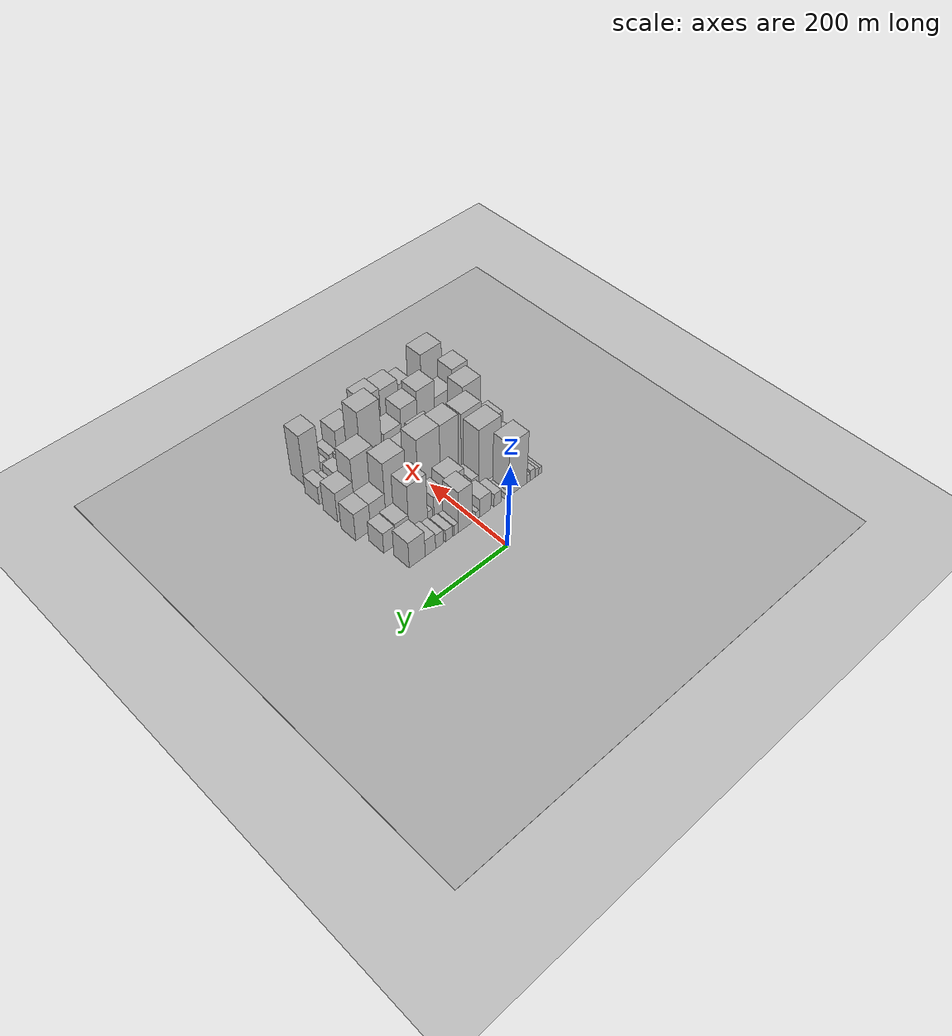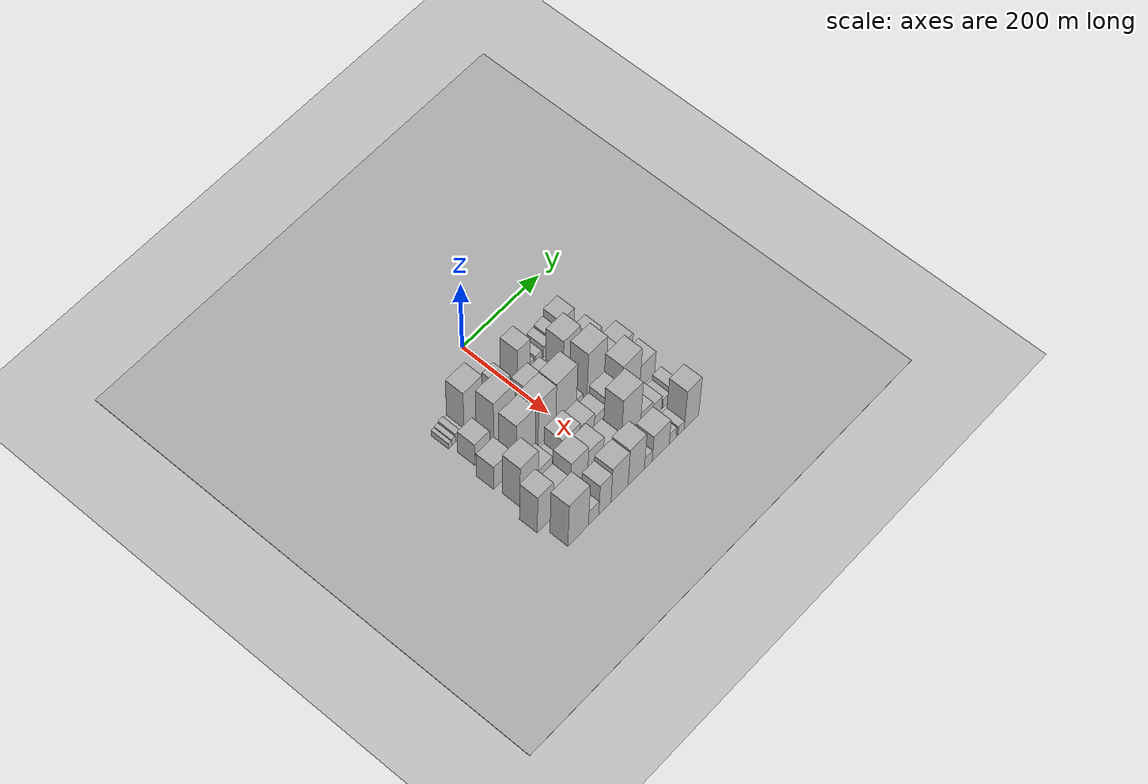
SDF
<sdf version="1.6">
 <world name="default">
  <include><name>ground_plane_1</name><uri>model://HANNAS_ground_plane</uri></include>
  <include>
   <name>ground_plane_2</name>
   <uri>model://HANNAS_ground_plane</uri>
   <pose>100 0 0  0 0 0</pose>
  </include>
  <model name="building_18">
   <static>1</static>
   <pose>100.0000 -163.0184 0 0.000000 0.000000 0.000000</pose>
   <link name="link">
    <pose>0 0 9.00 0 0 0</pose>
    <collision name="collision"><geometry><box><size>40.0000 7.5488 18.0000</size></box></geometry></collision>
    <visual name="visual">
     <cast_shadows>0</cast_shadows>
     <geometry><box><size>40.0000 7.5488 18.0000</size></box></geometry>
     <material>
      <script>
       <uri>model://HANNAS_wall/materials/scripts</uri>
       <uri>model://HANNAS_wall/materials/textures</uri>
       <name>vrc/HANNAS_wall</name>
      </script>
     </material>
    </visual>
   </link>
  </model>
  <model name="building_19">
   <static>1</static>
   <pose>100.0000 -154.2603 0 0.000000 0.000000 0.000000</pose>
   <link name="link">
    <pose>0 0 10.50 0 0 0</pose>
    <collision name="collision"><geometry><box><size>40.0000 9.9674 21.0000</size></box></geometry></collision>
    <visual name="visual">
     <cast_shadows>0</cast_shadows>
     <geometry><box><size>40.0000 9.9674 21.0000</size></box></geometry>
     <material>
      <script>
       <uri>model://HANNAS_wall/materials/scripts</uri>
       <uri>model://HANNAS_wall/materials/textures</uri>
       <name>vrc/HANNAS_wall</name>
      </script>
     </material>
    </visual>
   </link>
  </model>
  <model name="building_20">
   <static>1</static>
   <pose>100.0000 -143.1152 0 0.000000 0.000000 0.000000</pose>
   <link name="link">
    <pose>0 0 13.50 0 0 0</pose>
    <collision name="collision"><geometry><box><size>40.0000 12.3230 27.0000</size></box></geometry></collision>
    <visual name="visual">
     <cast_shadows>0</cast_shadows>
     <geometry><box><size>40.0000 12.3230 27.0000</size></box></geometry>
     <material>
      <script>
       <uri>model://HANNAS_wall/materials/scripts</uri>
       <uri>model://HANNAS_wall/materials/textures</uri>
       <name>vrc/HANNAS_wall</name>
      </script>
     </material>
    </visual>
   </link>
  </model>
  <model name="building_21">
   <static>1</static>
   <pose>100.0000 -132.4435 0 0.000000 0.000000 0.000000</pose>
   <link name="link">
    <pose>0 0 10.50 0 0 0</pose>
    <collision name="collision"><geometry><box><size>40.0000 9.0203 21.0000</size></box></geometry></collision>
    <visual name="visual">
     <cast_shadows>0</cast_shadows>
     <geometry><box><size>40.0000 9.0203 21.0000</size></box></geometry>
     <material>
      <script>
       <uri>model://HANNAS_wall/materials/scripts</uri>
       <uri>model://HANNAS_wall/materials/textures</uri>
       <name>vrc/HANNAS_wall</name>
      </script>
     </material>
    </visual>
   </link>
  </model>
  <model name="building_22">
   <static>1</static>
   <pose>100.0000 -104.0287 0 0.000000 0.000000 0.000000</pose>
   <link name="link">
    <pose>0 0 67.50 0 0 0</pose>
    <collision name="collision"><geometry><box><size>40.0000 47.8095 135.0000</size></box></geometry></collision>
    <visual name="visual">
     <cast_shadows>0</cast_shadows>
     <geometry><box><size>40.0000 47.8095 135.0000</size></box></geometry>
     <material>
      <script>
       <uri>model://HANNAS_wall/materials/scripts</uri>
       <uri>model://HANNAS_wall/materials/textures</uri>
       <name>vrc/HANNAS_wall</name>
      </script>
     </material>
    </visual>
   </link>
  </model>
  <model name="building_23">
   <static>1</static>
   <pose>100.0000 -76.4820 0 0.000000 0.000000 0.000000</pose>
   <link name="link">
    <pose>0 0 7.50 0 0 0</pose>
    <collision name="collision"><geometry><box><size>40.0000 7.2839 15.0000</size></box></geometry></collision>
    <visual name="visual">
     <cast_shadows>0</cast_shadows>
     <geometry><box><size>40.0000 7.2839 15.0000</size></box></geometry>
     <material>
      <script>
       <uri>model://HANNAS_wall/materials/scripts</uri>
       <uri>model://HANNAS_wall/materials/textures</uri>
       <name>vrc/HANNAS_wall</name>
      </script>
     </material>
    </visual>
   </link>
  </model>
  <model name="building_24">
   <static>1</static>
   <pose>100.0000 -53.9231 0 0.000000 0.000000 0.000000</pose>
   <link name="link">
    <pose>0 0 16.50 0 0 0</pose>
    <collision name="collision"><geometry><box><size>40.0000 17.8339 33.0000</size></box></geometry></collision>
    <visual name="visual">
     <cast_shadows>0</cast_shadows>
     <geometry><box><size>40.0000 17.8339 33.0000</size></box></geometry>
     <material>
      <script>
       <uri>model://HANNAS_wall/materials/scripts</uri>
       <uri>model://HANNAS_wall/materials/textures</uri>
       <name>vrc/HANNAS_wall</name>
      </script>
     </material>
    </visual>
   </link>
  </model>
  <model name="building_25">
   <static>1</static>
   <pose>100.0000 -22.7039 0 0.000000 0.000000 0.000000</pose>
   <link name="link">
    <pose>0 0 24.00 0 0 0</pose>
    <collision name="collision"><geometry><box><size>40.0000 28.6043 48.0000</size></box></geometry></collision>
    <visual name="visual">
     <cast_shadows>0</cast_shadows>
     <geometry><box><size>40.0000 28.6043 48.0000</size></box></geometry>
     <material>
      <script>
       <uri>model://HANNAS_wall/materials/scripts</uri>
       <uri>model://HANNAS_wall/materials/textures</uri>
       <name>vrc/HANNAS_wall</name>
      </script>
     </material>
    </visual>
   </link>
  </model>
  <model name="building_26">
   <static>1</static>
   <pose>100.0000 -3.8357 0 0.000000 0.000000 0.000000</pose>
   <link name="link">
    <pose>0 0 10.50 0 0 0</pose>
    <collision name="collision"><geometry><box><size>40.0000 9.1322 21.0000</size></box></geometry></collision>
    <visual name="visual">
     <cast_shadows>0</cast_shadows>
     <geometry><box><size>40.0000 9.1322 21.0000</size></box></geometry>
     <material>
      <script>
       <uri>model://HANNAS_wall/materials/scripts</uri>
       <uri>model://HANNAS_wall/materials/textures</uri>
       <name>vrc/HANNAS_wall</name>
      </script>
     </material>
    </visual>
   </link>
  </model>
  <model name="building_27">
   <static>1</static>
   <pose>100.0000 26.0662 0 0.000000 0.000000 0.000000</pose>
   <link name="link">
    <pose>0 0 52.50 0 0 0</pose>
    <collision name="collision"><geometry><box><size>40.0000 32.6717 105.0000</size></box></geometry></collision>
    <visual name="visual">
     <cast_shadows>0</cast_shadows>
     <geometry><box><size>40.0000 32.6717 105.0000</size></box></geometry>
     <material>
      <script>
       <uri>model://HANNAS_wall/materials/scripts</uri>
       <uri>model://HANNAS_wall/materials/textures</uri>
       <name>vrc/HANNAS_wall</name>
      </script>
     </material>
    </visual>
   </link>
  </model>
  <model name="building_28">
   <static>1</static>
   <pose>100.0000 47.9995 0 0.000000 0.000000 0.000000</pose>
   <link name="link">
    <pose>0 0 13.50 0 0 0</pose>
    <collision name="collision"><geometry><box><size>40.0000 11.1949 27.0000</size></box></geometry></collision>
    <visual name="visual">
     <cast_shadows>0</cast_shadows>
     <geometry><box><size>40.0000 11.1949 27.0000</size></box></geometry>
     <material>
      <script>
       <uri>model://HANNAS_wall/materials/scripts</uri>
       <uri>model://HANNAS_wall/materials/textures</uri>
       <name>vrc/HANNAS_wall</name>
      </script>
     </material>
    </visual>
   </link>
  </model>
  <model name="building_29">
   <static>1</static>
   <pose>100.0000 65.0719 0 0.000000 0.000000 0.000000</pose>
   <link name="link">
    <pose>0 0 15.00 0 0 0</pose>
    <collision name="collision"><geometry><box><size>40.0000 16.9499 30.0000</size></box></geometry></collision>
    <visual name="visual">
     <cast_shadows>0</cast_shadows>
     <geometry><box><size>40.0000 16.9499 30.0000</size></box></geometry>
     <material>
      <script>
       <uri>model://HANNAS_wall/materials/scripts</uri>
       <uri>model://HANNAS_wall/materials/textures</uri>
       <name>vrc/HANNAS_wall</name>
      </script>
     </material>
    </visual>
   </link>
  </model>
  <model name="building_30">
   <static>1</static>
   <pose>100.0000 87.8286 0 0.000000 0.000000 0.000000</pose>
   <link name="link">
    <pose>0 0 18.00 0 0 0</pose>
    <collision name="collision"><geometry><box><size>40.0000 18.5635 36.0000</size></box></geometry></collision>
    <visual name="visual">
     <cast_shadows>0</cast_shadows>
     <geometry><box><size>40.0000 18.5635 36.0000</size></box></geometry>
     <material>
      <script>
       <uri>model://HANNAS_wall/materials/scripts</uri>
       <uri>model://HANNAS_wall/materials/textures</uri>
       <name>vrc/HANNAS_wall</name>
      </script>
     </material>
    </visual>
   </link>
  </model>
  <model name="building_31">
   <static>1</static>
   <pose>100.0000 109.3706 0 0.000000 0.000000 0.000000</pose>
   <link name="link">
    <pose>0 0 21.00 0 0 0</pose>
    <collision name="collision"><geometry><box><size>40.0000 24.5204 42.0000</size></box></geometry></collision>
    <visual name="visual">
     <cast_shadows>0</cast_shadows>
     <geometry><box><size>40.0000 24.5204 42.0000</size></box></geometry>
     <material>
      <script>
       <uri>model://HANNAS_wall/materials/scripts</uri>
       <uri>model://HANNAS_wall/materials/textures</uri>
       <name>vrc/HANNAS_wall</name>
      </script>
     </material>
    </visual>
   </link>
  </model>
  <model name="building_32">
   <static>1</static>
   <pose>100.0000 140.1107 0 0.000000 0.000000 0.000000</pose>
   <link name="link">
    <pose>0 0 33.00 0 0 0</pose>
    <collision name="collision"><geometry><box><size>40.0000 36.9599 66.0000</size></box></geometry></collision>
    <visual name="visual">
     <cast_shadows>0</cast_shadows>
     <geometry><box><size>40.0000 36.9599 66.0000</size></box></geometry>
     <material>
      <script>
       <uri>model://HANNAS_wall/materials/scripts</uri>
       <uri>model://HANNAS_wall/materials/textures</uri>
       <name>vrc/HANNAS_wall</name>
      </script>
     </material>
    </visual>
   </link>
  </model>
  <model name="building_78">
   <static>1</static>
   <pose>155.0000 -142.1408 0 0.000000 0.000000 0.000000</pose>
   <link name="link">
    <pose>0 0 34.50 0 0 0</pose>
    <collision name="collision"><geometry><box><size>40.0000 37.4465 69.0000</size></box></geometry></collision>
    <visual name="visual">
     <cast_shadows>0</cast_shadows>
     <geometry><box><size>40.0000 37.4465 69.0000</size></box></geometry>
     <material>
      <script>
       <uri>model://HANNAS_wall/materials/scripts</uri>
       <uri>model://HANNAS_wall/materials/textures</uri>
       <name>vrc/HANNAS_wall</name>
      </script>
     </material>
    </visual>
   </link>
  </model>
  <model name="building_79">
   <static>1</static>
   <pose>155.0000 -86.2369 0 0.000000 0.000000 0.000000</pose>
   <link name="link">
    <pose>0 0 72.00 0 0 0</pose>
    <collision name="collision"><geometry><box><size>40.0000 54.3613 144.0000</size></box></geometry></collision>
    <visual name="visual">
     <cast_shadows>0</cast_shadows>
     <geometry><box><size>40.0000 54.3613 144.0000</size></box></geometry>
     <material>
      <script>
       <uri>model://HANNAS_wall/materials/scripts</uri>
       <uri>model://HANNAS_wall/materials/textures</uri>
       <name>vrc/HANNAS_wall</name>
      </script>
     </material>
    </visual>
   </link>
  </model>
  <model name="building_80">
   <static>1</static>
   <pose>155.0000 -50.6444 0 0.000000 0.000000 0.000000</pose>
   <link name="link">
    <pose>0 0 15.00 0 0 0</pose>
    <collision name="collision"><geometry><box><size>40.0000 16.8236 30.0000</size></box></geometry></collision>
    <visual name="visual">
     <cast_shadows>0</cast_shadows>
     <geometry><box><size>40.0000 16.8236 30.0000</size></box></geometry>
     <material>
      <script>
       <uri>model://HANNAS_wall/materials/scripts</uri>
       <uri>model://HANNAS_wall/materials/textures</uri>
       <name>vrc/HANNAS_wall</name>
      </script>
     </material>
    </visual>
   </link>
  </model>
  <model name="building_81">
   <static>1</static>
   <pose>155.0000 -28.6527 0 0.000000 0.000000 0.000000</pose>
   <link name="link">
    <pose>0 0 13.50 0 0 0</pose>
    <collision name="collision"><geometry><box><size>40.0000 11.1598 27.0000</size></box></geometry></collision>
    <visual name="visual">
     <cast_shadows>0</cast_shadows>
     <geometry><box><size>40.0000 11.1598 27.0000</size></box></geometry>
     <material>
      <script>
       <uri>model://HANNAS_wall/materials/scripts</uri>
       <uri>model://HANNAS_wall/materials/textures</uri>
       <name>vrc/HANNAS_wall</name>
      </script>
     </material>
    </visual>
   </link>
  </model>
  <model name="building_82">
   <static>1</static>
   <pose>155.0000 -2.6761 0 0.000000 0.000000 0.000000</pose>
   <link name="link">
    <pose>0 0 37.50 0 0 0</pose>
    <collision name="collision"><geometry><box><size>40.0000 40.7935 75.0000</size></box></geometry></collision>
    <visual name="visual">
     <cast_shadows>0</cast_shadows>
     <geometry><box><size>40.0000 40.7935 75.0000</size></box></geometry>
     <material>
      <script>
       <uri>model://HANNAS_wall/materials/scripts</uri>
       <uri>model://HANNAS_wall/materials/textures</uri>
       <name>vrc/HANNAS_wall</name>
      </script>
     </material>
    </visual>
   </link>
  </model>
  <model name="building_83">
   <static>1</static>
   <pose>155.0000 36.0222 0 0.000000 0.000000 0.000000</pose>
   <link name="link">
    <pose>0 0 27.00 0 0 0</pose>
    <collision name="collision"><geometry><box><size>40.0000 28.6031 54.0000</size></box></geometry></collision>
    <visual name="visual">
     <cast_shadows>0</cast_shadows>
     <geometry><box><size>40.0000 28.6031 54.0000</size></box></geometry>
     <material>
      <script>
       <uri>model://HANNAS_wall/materials/scripts</uri>
       <uri>model://HANNAS_wall/materials/textures</uri>
       <name>vrc/HANNAS_wall</name>
      </script>
     </material>
    </visual>
   </link>
  </model>
  <model name="building_84">
   <static>1</static>
   <pose>155.0000 59.5475 0 0.000000 0.000000 0.000000</pose>
   <link name="link">
    <pose>0 0 13.50 0 0 0</pose>
    <collision name="collision"><geometry><box><size>40.0000 12.4475 27.0000</size></box></geometry></collision>
    <visual name="visual">
     <cast_shadows>0</cast_shadows>
     <geometry><box><size>40.0000 12.4475 27.0000</size></box></geometry>
     <material>
      <script>
       <uri>model://HANNAS_wall/materials/scripts</uri>
       <uri>model://HANNAS_wall/materials/textures</uri>
       <name>vrc/HANNAS_wall</name>
      </script>
     </material>
    </visual>
   </link>
  </model>
  <model name="building_85">
   <static>1</static>
   <pose>155.0000 87.7738 0 0.000000 0.000000 0.000000</pose>
   <link name="link">
    <pose>0 0 63.00 0 0 0</pose>
    <collision name="collision"><geometry><box><size>40.0000 44.0051 126.0000</size></box></geometry></collision>
    <visual name="visual">
     <cast_shadows>0</cast_shadows>
     <geometry><box><size>40.0000 44.0051 126.0000</size></box></geometry>
     <material>
      <script>
       <uri>model://HANNAS_wall/materials/scripts</uri>
       <uri>model://HANNAS_wall/materials/textures</uri>
       <name>vrc/HANNAS_wall</name>
      </script>
     </material>
    </visual>
   </link>
  </model>
  <model name="building_86">
   <static>1</static>
   <pose>155.0000 125.3939 0 0.000000 0.000000 0.000000</pose>
   <link name="link">
    <pose>0 0 27.00 0 0 0</pose>
    <collision name="collision"><geometry><box><size>40.0000 31.2350 54.0000</size></box></geometry></collision>
    <visual name="visual">
     <cast_shadows>0</cast_shadows>
     <geometry><box><size>40.0000 31.2350 54.0000</size></box></geometry>
     <material>
      <script>
       <uri>model://HANNAS_wall/materials/scripts</uri>
       <uri>model://HANNAS_wall/materials/textures</uri>
       <name>vrc/HANNAS_wall</name>
      </script>
     </material>
    </visual>
   </link>
  </model>
  <model name="building_87">
   <static>1</static>
   <pose>155.0000 154.8384 0 0.000000 0.000000 0.000000</pose>
   <link name="link">
    <pose>0 0 25.50 0 0 0</pose>
    <collision name="collision"><geometry><box><size>40.0000 27.6541 51.0000</size></box></geometry></collision>
    <visual name="visual">
     <cast_shadows>0</cast_shadows>
     <geometry><box><size>40.0000 27.6541 51.0000</size></box></geometry>
     <material>
      <script>
       <uri>model://HANNAS_wall/materials/scripts</uri>
       <uri>model://HANNAS_wall/materials/textures</uri>
       <name>vrc/HANNAS_wall</name>
      </script>
     </material>
    </visual>
   </link>
  </model>
  <model name="building_126">
   <static>1</static>
   <pose>210.0000 -151.9403 0 0.000000 0.000000 0.000000</pose>
   <link name="link">
    <pose>0 0 37.50 0 0 0</pose>
    <collision name="collision"><geometry><box><size>40.0000 44.3490 75.0000</size></box></geometry></collision>
    <visual name="visual">
     <cast_shadows>0</cast_shadows>
     <geometry><box><size>40.0000 44.3490 75.0000</size></box></geometry>
     <material>
      <script>
       <uri>model://HANNAS_wall/materials/scripts</uri>
       <uri>model://HANNAS_wall/materials/textures</uri>
       <name>vrc/HANNAS_wall</name>
      </script>
     </material>
    </visual>
   </link>
  </model>
  <model name="building_127">
   <static>1</static>
   <pose>210.0000 -124.9098 0 0.000000 0.000000 0.000000</pose>
   <link name="link">
    <pose>0 0 12.00 0 0 0</pose>
    <collision name="collision"><geometry><box><size>40.0000 9.7119 24.0000</size></box></geometry></collision>
    <visual name="visual">
     <cast_shadows>0</cast_shadows>
     <geometry><box><size>40.0000 9.7119 24.0000</size></box></geometry>
     <material>
      <script>
       <uri>model://HANNAS_wall/materials/scripts</uri>
       <uri>model://HANNAS_wall/materials/textures</uri>
       <name>vrc/HANNAS_wall</name>
      </script>
     </material>
    </visual>
   </link>
  </model>
  <model name="building_128">
   <static>1</static>
   <pose>210.0000 -92.5171 0 0.000000 0.000000 0.000000</pose>
   <link name="link">
    <pose>0 0 69.00 0 0 0</pose>
    <collision name="collision"><geometry><box><size>40.0000 49.0736 138.0000</size></box></geometry></collision>
    <visual name="visual">
     <cast_shadows>0</cast_shadows>
     <geometry><box><size>40.0000 49.0736 138.0000</size></box></geometry>
     <material>
      <script>
       <uri>model://HANNAS_wall/materials/scripts</uri>
       <uri>model://HANNAS_wall/materials/textures</uri>
       <name>vrc/HANNAS_wall</name>
      </script>
     </material>
    </visual>
   </link>
  </model>
  <model name="building_129">
   <static>1</static>
   <pose>210.0000 -38.4505 0 0.000000 0.000000 0.000000</pose>
   <link name="link">
    <pose>0 0 72.00 0 0 0</pose>
    <collision name="collision"><geometry><box><size>40.0000 45.0595 144.0000</size></box></geometry></collision>
    <visual name="visual">
     <cast_shadows>0</cast_shadows>
     <geometry><box><size>40.0000 45.0595 144.0000</size></box></geometry>
     <material>
      <script>
       <uri>model://HANNAS_wall/materials/scripts</uri>
       <uri>model://HANNAS_wall/materials/textures</uri>
       <name>vrc/HANNAS_wall</name>
      </script>
     </material>
    </visual>
   </link>
  </model>
  <model name="building_130">
   <static>1</static>
   <pose>210.0000 11.1599 0 0.000000 0.000000 0.000000</pose>
   <link name="link">
    <pose>0 0 73.50 0 0 0</pose>
    <collision name="collision"><geometry><box><size>40.0000 54.1612 147.0000</size></box></geometry></collision>
    <visual name="visual">
     <cast_shadows>0</cast_shadows>
     <geometry><box><size>40.0000 54.1612 147.0000</size></box></geometry>
     <material>
      <script>
       <uri>model://HANNAS_wall/materials/scripts</uri>
       <uri>model://HANNAS_wall/materials/textures</uri>
       <name>vrc/HANNAS_wall</name>
      </script>
     </material>
    </visual>
   </link>
  </model>
  <model name="building_131">
   <static>1</static>
   <pose>210.0000 46.9791 0 0.000000 0.000000 0.000000</pose>
   <link name="link">
    <pose>0 0 15.00 0 0 0</pose>
    <collision name="collision"><geometry><box><size>40.0000 17.4772 30.0000</size></box></geometry></collision>
    <visual name="visual">
     <cast_shadows>0</cast_shadows>
     <geometry><box><size>40.0000 17.4772 30.0000</size></box></geometry>
     <material>
      <script>
       <uri>model://HANNAS_wall/materials/scripts</uri>
       <uri>model://HANNAS_wall/materials/textures</uri>
       <name>vrc/HANNAS_wall</name>
      </script>
     </material>
    </visual>
   </link>
  </model>
  <model name="building_132">
   <static>1</static>
   <pose>210.0000 90.5942 0 0.000000 0.000000 0.000000</pose>
   <link name="link">
    <pose>0 0 72.00 0 0 0</pose>
    <collision name="collision"><geometry><box><size>40.0000 49.7530 144.0000</size></box></geometry></collision>
    <visual name="visual">
     <cast_shadows>0</cast_shadows>
     <geometry><box><size>40.0000 49.7530 144.0000</size></box></geometry>
     <material>
      <script>
       <uri>model://HANNAS_wall/materials/scripts</uri>
       <uri>model://HANNAS_wall/materials/textures</uri>
       <name>vrc/HANNAS_wall</name>
      </script>
     </material>
    </visual>
   </link>
  </model>
  <model name="building_133">
   <static>1</static>
   <pose>210.0000 133.3489 0 0.000000 0.000000 0.000000</pose>
   <link name="link">
    <pose>0 0 34.50 0 0 0</pose>
    <collision name="collision"><geometry><box><size>40.0000 35.7564 69.0000</size></box></geometry></collision>
    <visual name="visual">
     <cast_shadows>0</cast_shadows>
     <geometry><box><size>40.0000 35.7564 69.0000</size></box></geometry>
     <material>
      <script>
       <uri>model://HANNAS_wall/materials/scripts</uri>
       <uri>model://HANNAS_wall/materials/textures</uri>
       <name>vrc/HANNAS_wall</name>
      </script>
     </material>
    </visual>
   </link>
  </model>
  <model name="building_134">
   <static>1</static>
   <pose>210.0000 168.4839 0 0.000000 0.000000 0.000000</pose>
   <link name="link">
    <pose>0 0 34.50 0 0 0</pose>
    <collision name="collision"><geometry><box><size>40.0000 34.5136 69.0000</size></box></geometry></collision>
    <visual name="visual">
     <cast_shadows>0</cast_shadows>
     <geometry><box><size>40.0000 34.5136 69.0000</size></box></geometry>
     <material>
      <script>
       <uri>model://HANNAS_wall/materials/scripts</uri>
       <uri>model://HANNAS_wall/materials/textures</uri>
       <name>vrc/HANNAS_wall</name>
      </script>
     </material>
    </visual>
   </link>
  </model>
  <model name="building_178">
   <static>1</static>
   <pose>265.0000 -146.5309 0 0.000000 0.000000 0.000000</pose>
   <link name="link">
    <pose>0 0 64.50 0 0 0</pose>
    <collision name="collision"><geometry><box><size>40.0000 46.0004 129.0000</size></box></geometry></collision>
    <visual name="visual">
     <cast_shadows>0</cast_shadows>
     <geometry><box><size>40.0000 46.0004 129.0000</size></box></geometry>
     <material>
      <script>
       <uri>model://HANNAS_wall/materials/scripts</uri>
       <uri>model://HANNAS_wall/materials/textures</uri>
       <name>vrc/HANNAS_wall</name>
      </script>
     </material>
    </visual>
   </link>
  </model>
  <model name="building_179">
   <static>1</static>
   <pose>265.0000 -105.3120 0 0.000000 0.000000 0.000000</pose>
   <link name="link">
    <pose>0 0 31.50 0 0 0</pose>
    <collision name="collision"><geometry><box><size>40.0000 36.4373 63.0000</size></box></geometry></collision>
    <visual name="visual">
     <cast_shadows>0</cast_shadows>
     <geometry><box><size>40.0000 36.4373 63.0000</size></box></geometry>
     <material>
      <script>
       <uri>model://HANNAS_wall/materials/scripts</uri>
       <uri>model://HANNAS_wall/materials/textures</uri>
       <name>vrc/HANNAS_wall</name>
      </script>
     </material>
    </visual>
   </link>
  </model>
  <model name="building_180">
   <static>1</static>
   <pose>265.0000 -71.3952 0 0.000000 0.000000 0.000000</pose>
   <link name="link">
    <pose>0 0 15.00 0 0 0</pose>
    <collision name="collision"><geometry><box><size>40.0000 17.3963 30.0000</size></box></geometry></collision>
    <visual name="visual">
     <cast_shadows>0</cast_shadows>
     <geometry><box><size>40.0000 17.3963 30.0000</size></box></geometry>
     <material>
      <script>
       <uri>model://HANNAS_wall/materials/scripts</uri>
       <uri>model://HANNAS_wall/materials/textures</uri>
       <name>vrc/HANNAS_wall</name>
      </script>
     </material>
    </visual>
   </link>
  </model>
  <model name="building_181">
   <static>1</static>
   <pose>265.0000 -39.7646 0 0.000000 0.000000 0.000000</pose>
   <link name="link">
    <pose>0 0 42.00 0 0 0</pose>
    <collision name="collision"><geometry><box><size>40.0000 45.8650 84.0000</size></box></geometry></collision>
    <visual name="visual">
     <cast_shadows>0</cast_shadows>
     <geometry><box><size>40.0000 45.8650 84.0000</size></box></geometry>
     <material>
      <script>
       <uri>model://HANNAS_wall/materials/scripts</uri>
       <uri>model://HANNAS_wall/materials/textures</uri>
       <name>vrc/HANNAS_wall</name>
      </script>
     </material>
    </visual>
   </link>
  </model>
  <model name="building_182">
   <static>1</static>
   <pose>265.0000 1.9925 0 0.000000 0.000000 0.000000</pose>
   <link name="link">
    <pose>0 0 34.50 0 0 0</pose>
    <collision name="collision"><geometry><box><size>40.0000 37.6491 69.0000</size></box></geometry></collision>
    <visual name="visual">
     <cast_shadows>0</cast_shadows>
     <geometry><box><size>40.0000 37.6491 69.0000</size></box></geometry>
     <material>
      <script>
       <uri>model://HANNAS_wall/materials/scripts</uri>
       <uri>model://HANNAS_wall/materials/textures</uri>
       <name>vrc/HANNAS_wall</name>
      </script>
     </material>
    </visual>
   </link>
  </model>
  <model name="building_183">
   <static>1</static>
   <pose>265.0000 36.5399 0 0.000000 0.000000 0.000000</pose>
   <link name="link">
    <pose>0 0 27.00 0 0 0</pose>
    <collision name="collision"><geometry><box><size>40.0000 31.4458 54.0000</size></box></geometry></collision>
    <visual name="visual">
     <cast_shadows>0</cast_shadows>
     <geometry><box><size>40.0000 31.4458 54.0000</size></box></geometry>
     <material>
      <script>
       <uri>model://HANNAS_wall/materials/scripts</uri>
       <uri>model://HANNAS_wall/materials/textures</uri>
       <name>vrc/HANNAS_wall</name>
      </script>
     </material>
    </visual>
   </link>
  </model>
  <model name="building_184">
   <static>1</static>
   <pose>265.0000 72.0934 0 0.000000 0.000000 0.000000</pose>
   <link name="link">
    <pose>0 0 37.50 0 0 0</pose>
    <collision name="collision"><geometry><box><size>40.0000 39.6612 75.0000</size></box></geometry></collision>
    <visual name="visual">
     <cast_shadows>0</cast_shadows>
     <geometry><box><size>40.0000 39.6612 75.0000</size></box></geometry>
     <material>
      <script>
       <uri>model://HANNAS_wall/materials/scripts</uri>
       <uri>model://HANNAS_wall/materials/textures</uri>
       <name>vrc/HANNAS_wall</name>
      </script>
     </material>
    </visual>
   </link>
  </model>
  <model name="building_185">
   <static>1</static>
   <pose>265.0000 116.7070 0 0.000000 0.000000 0.000000</pose>
   <link name="link">
    <pose>0 0 66.00 0 0 0</pose>
    <collision name="collision"><geometry><box><size>40.0000 49.5660 132.0000</size></box></geometry></collision>
    <visual name="visual">
     <cast_shadows>0</cast_shadows>
     <geometry><box><size>40.0000 49.5660 132.0000</size></box></geometry>
     <material>
      <script>
       <uri>model://HANNAS_wall/materials/scripts</uri>
       <uri>model://HANNAS_wall/materials/textures</uri>
       <name>vrc/HANNAS_wall</name>
      </script>
     </material>
    </visual>
   </link>
  </model>
  <model name="building_186">
   <static>1</static>
   <pose>265.0000 161.3272 0 0.000000 0.000000 0.000000</pose>
   <link name="link">
    <pose>0 0 37.50 0 0 0</pose>
    <collision name="collision"><geometry><box><size>40.0000 39.6744 75.0000</size></box></geometry></collision>
    <visual name="visual">
     <cast_shadows>0</cast_shadows>
     <geometry><box><size>40.0000 39.6744 75.0000</size></box></geometry>
     <material>
      <script>
       <uri>model://HANNAS_wall/materials/scripts</uri>
       <uri>model://HANNAS_wall/materials/textures</uri>
       <name>vrc/HANNAS_wall</name>
      </script>
     </material>
    </visual>
   </link>
  </model>
  <model name="building_229">
   <static>1</static>
   <pose>320.0000 -168.1345 0 0.000000 0.000000 0.000000</pose>
   <link name="link">
    <pose>0 0 60.00 0 0 0</pose>
    <collision name="collision"><geometry><box><size>40.0000 39.2215 120.0000</size></box></geometry></collision>
    <visual name="visual">
     <cast_shadows>0</cast_shadows>
     <geometry><box><size>40.0000 39.2215 120.0000</size></box></geometry>
     <material>
      <script>
       <uri>model://HANNAS_wall/materials/scripts</uri>
       <uri>model://HANNAS_wall/materials/textures</uri>
       <name>vrc/HANNAS_wall</name>
      </script>
     </material>
    </visual>
   </link>
  </model>
  <model name="building_230">
   <static>1</static>
   <pose>320.0000 -126.0389 0 0.000000 0.000000 0.000000</pose>
   <link name="link">
    <pose>0 0 39.00 0 0 0</pose>
    <collision name="collision"><geometry><box><size>40.0000 44.9696 78.0000</size></box></geometry></collision>
    <visual name="visual">
     <cast_shadows>0</cast_shadows>
     <geometry><box><size>40.0000 44.9696 78.0000</size></box></geometry>
     <material>
      <script>
       <uri>model://HANNAS_wall/materials/scripts</uri>
       <uri>model://HANNAS_wall/materials/textures</uri>
       <name>vrc/HANNAS_wall</name>
      </script>
     </material>
    </visual>
   </link>
  </model>
  <model name="building_231">
   <static>1</static>
   <pose>320.0000 -81.7339 0 0.000000 0.000000 0.000000</pose>
   <link name="link">
    <pose>0 0 61.50 0 0 0</pose>
    <collision name="collision"><geometry><box><size>40.0000 43.6405 123.0000</size></box></geometry></collision>
    <visual name="visual">
     <cast_shadows>0</cast_shadows>
     <geometry><box><size>40.0000 43.6405 123.0000</size></box></geometry>
     <material>
      <script>
       <uri>model://HANNAS_wall/materials/scripts</uri>
       <uri>model://HANNAS_wall/materials/textures</uri>
       <name>vrc/HANNAS_wall</name>
      </script>
     </material>
    </visual>
   </link>
  </model>
  <model name="building_232">
   <static>1</static>
   <pose>320.0000 -39.9417 0 0.000000 0.000000 0.000000</pose>
   <link name="link">
    <pose>0 0 52.50 0 0 0</pose>
    <collision name="collision"><geometry><box><size>40.0000 39.9439 105.0000</size></box></geometry></collision>
    <visual name="visual">
     <cast_shadows>0</cast_shadows>
     <geometry><box><size>40.0000 39.9439 105.0000</size></box></geometry>
     <material>
      <script>
       <uri>model://HANNAS_wall/materials/scripts</uri>
       <uri>model://HANNAS_wall/materials/textures</uri>
       <name>vrc/HANNAS_wall</name>
      </script>
     </material>
    </visual>
   </link>
  </model>
  <model name="building_233">
   <static>1</static>
   <pose>320.0000 0.5958 0 0.000000 0.000000 0.000000</pose>
   <link name="link">
    <pose>0 0 34.50 0 0 0</pose>
    <collision name="collision"><geometry><box><size>40.0000 41.1311 69.0000</size></box></geometry></collision>
    <visual name="visual">
     <cast_shadows>0</cast_shadows>
     <geometry><box><size>40.0000 41.1311 69.0000</size></box></geometry>
     <material>
      <script>
       <uri>model://HANNAS_wall/materials/scripts</uri>
       <uri>model://HANNAS_wall/materials/textures</uri>
       <name>vrc/HANNAS_wall</name>
      </script>
     </material>
    </visual>
   </link>
  </model>
  <model name="building_234">
   <static>1</static>
   <pose>320.0000 52.4547 0 0.000000 0.000000 0.000000</pose>
   <link name="link">
    <pose>0 0 81.00 0 0 0</pose>
    <collision name="collision"><geometry><box><size>40.0000 50.5869 162.0000</size></box></geometry></collision>
    <visual name="visual">
     <cast_shadows>0</cast_shadows>
     <geometry><box><size>40.0000 50.5869 162.0000</size></box></geometry>
     <material>
      <script>
       <uri>model://HANNAS_wall/materials/scripts</uri>
       <uri>model://HANNAS_wall/materials/textures</uri>
       <name>vrc/HANNAS_wall</name>
      </script>
     </material>
    </visual>
   </link>
  </model>
  <model name="building_235">
   <static>1</static>
   <pose>320.0000 93.6057 0 0.000000 0.000000 0.000000</pose>
   <link name="link">
    <pose>0 0 28.50 0 0 0</pose>
    <collision name="collision"><geometry><box><size>40.0000 31.7150 57.0000</size></box></geometry></collision>
    <visual name="visual">
     <cast_shadows>0</cast_shadows>
     <geometry><box><size>40.0000 31.7150 57.0000</size></box></geometry>
     <material>
      <script>
       <uri>model://HANNAS_wall/materials/scripts</uri>
       <uri>model://HANNAS_wall/materials/textures</uri>
       <name>vrc/HANNAS_wall</name>
      </script>
     </material>
    </visual>
   </link>
  </model>
  <model name="building_236">
   <static>1</static>
   <pose>320.0000 122.1758 0 0.000000 0.000000 0.000000</pose>
   <link name="link">
    <pose>0 0 22.50 0 0 0</pose>
    <collision name="collision"><geometry><box><size>40.0000 25.4252 45.0000</size></box></geometry></collision>
    <visual name="visual">
     <cast_shadows>0</cast_shadows>
     <geometry><box><size>40.0000 25.4252 45.0000</size></box></geometry>
     <material>
      <script>
       <uri>model://HANNAS_wall/materials/scripts</uri>
       <uri>model://HANNAS_wall/materials/textures</uri>
       <name>vrc/HANNAS_wall</name>
      </script>
     </material>
    </visual>
   </link>
  </model>
  <model name="building_237">
   <static>1</static>
   <pose>320.0000 146.7210 0 0.000000 0.000000 0.000000</pose>
   <link name="link">
    <pose>0 0 15.00 0 0 0</pose>
    <collision name="collision"><geometry><box><size>40.0000 17.6654 30.0000</size></box></geometry></collision>
    <visual name="visual">
     <cast_shadows>0</cast_shadows>
     <geometry><box><size>40.0000 17.6654 30.0000</size></box></geometry>
     <material>
      <script>
       <uri>model://HANNAS_wall/materials/scripts</uri>
       <uri>model://HANNAS_wall/materials/textures</uri>
       <name>vrc/HANNAS_wall</name>
      </script>
     </material>
    </visual>
   </link>
  </model>
  <model name="building_238">
   <static>1</static>
   <pose>320.0000 167.1208 0 0.000000 0.000000 0.000000</pose>
   <link name="link">
    <pose>0 0 22.50 0 0 0</pose>
    <collision name="collision"><geometry><box><size>40.0000 23.1341 45.0000</size></box></geometry></collision>
    <visual name="visual">
     <cast_shadows>0</cast_shadows>
     <geometry><box><size>40.0000 23.1341 45.0000</size></box></geometry>
     <material>
      <script>
       <uri>model://HANNAS_wall/materials/scripts</uri>
       <uri>model://HANNAS_wall/materials/textures</uri>
       <name>vrc/HANNAS_wall</name>
      </script>
     </material>
    </visual>
   </link>
  </model>
  <model name="building_283">
   <static>1</static>
   <pose>375.0000 -146.4247 0 0.000000 0.000000 0.000000</pose>
   <link name="link">
    <pose>0 0 69.00 0 0 0</pose>
    <collision name="collision"><geometry><box><size>40.0000 52.5288 138.0000</size></box></geometry></collision>
    <visual name="visual">
     <cast_shadows>0</cast_shadows>
     <geometry><box><size>40.0000 52.5288 138.0000</size></box></geometry>
     <material>
      <script>
       <uri>model://HANNAS_wall/materials/scripts</uri>
       <uri>model://HANNAS_wall/materials/textures</uri>
       <name>vrc/HANNAS_wall</name>
      </script>
     </material>
    </visual>
   </link>
  </model>
  <model name="building_284">
   <static>1</static>
   <pose>375.0000 -106.8949 0 0.000000 0.000000 0.000000</pose>
   <link name="link">
    <pose>0 0 24.00 0 0 0</pose>
    <collision name="collision"><geometry><box><size>40.0000 26.5307 48.0000</size></box></geometry></collision>
    <visual name="visual">
     <cast_shadows>0</cast_shadows>
     <geometry><box><size>40.0000 26.5307 48.0000</size></box></geometry>
     <material>
      <script>
       <uri>model://HANNAS_wall/materials/scripts</uri>
       <uri>model://HANNAS_wall/materials/textures</uri>
       <name>vrc/HANNAS_wall</name>
      </script>
     </material>
    </visual>
   </link>
  </model>
  <model name="building_285">
   <static>1</static>
   <pose>375.0000 -77.9686 0 0.000000 0.000000 0.000000</pose>
   <link name="link">
    <pose>0 0 49.50 0 0 0</pose>
    <collision name="collision"><geometry><box><size>40.0000 31.3218 99.0000</size></box></geometry></collision>
    <visual name="visual">
     <cast_shadows>0</cast_shadows>
     <geometry><box><size>40.0000 31.3218 99.0000</size></box></geometry>
     <material>
      <script>
       <uri>model://HANNAS_wall/materials/scripts</uri>
       <uri>model://HANNAS_wall/materials/textures</uri>
       <name>vrc/HANNAS_wall</name>
      </script>
     </material>
    </visual>
   </link>
  </model>
  <model name="building_286">
   <static>1</static>
   <pose>375.0000 -40.1526 0 0.000000 0.000000 0.000000</pose>
   <link name="link">
    <pose>0 0 57.00 0 0 0</pose>
    <collision name="collision"><geometry><box><size>40.0000 44.3102 114.0000</size></box></geometry></collision>
    <visual name="visual">
     <cast_shadows>0</cast_shadows>
     <geometry><box><size>40.0000 44.3102 114.0000</size></box></geometry>
     <material>
      <script>
       <uri>model://HANNAS_wall/materials/scripts</uri>
       <uri>model://HANNAS_wall/materials/textures</uri>
       <name>vrc/HANNAS_wall</name>
      </script>
     </material>
    </visual>
   </link>
  </model>
  <model name="building_287">
   <static>1</static>
   <pose>375.0000 3.3159 0 0.000000 0.000000 0.000000</pose>
   <link name="link">
    <pose>0 0 60.00 0 0 0</pose>
    <collision name="collision"><geometry><box><size>40.0000 42.6268 120.0000</size></box></geometry></collision>
    <visual name="visual">
     <cast_shadows>0</cast_shadows>
     <geometry><box><size>40.0000 42.6268 120.0000</size></box></geometry>
     <material>
      <script>
       <uri>model://HANNAS_wall/materials/scripts</uri>
       <uri>model://HANNAS_wall/materials/textures</uri>
       <name>vrc/HANNAS_wall</name>
      </script>
     </material>
    </visual>
   </link>
  </model>
  <model name="building_288">
   <static>1</static>
   <pose>375.0000 34.8198 0 0.000000 0.000000 0.000000</pose>
   <link name="link">
    <pose>0 0 19.50 0 0 0</pose>
    <collision name="collision"><geometry><box><size>40.0000 20.3811 39.0000</size></box></geometry></collision>
    <visual name="visual">
     <cast_shadows>0</cast_shadows>
     <geometry><box><size>40.0000 20.3811 39.0000</size></box></geometry>
     <material>
      <script>
       <uri>model://HANNAS_wall/materials/scripts</uri>
       <uri>model://HANNAS_wall/materials/textures</uri>
       <name>vrc/HANNAS_wall</name>
      </script>
     </material>
    </visual>
   </link>
  </model>
  <model name="building_289">
   <static>1</static>
   <pose>375.0000 67.4038 0 0.000000 0.000000 0.000000</pose>
   <link name="link">
    <pose>0 0 42.00 0 0 0</pose>
    <collision name="collision"><geometry><box><size>40.0000 44.7869 84.0000</size></box></geometry></collision>
    <visual name="visual">
     <cast_shadows>0</cast_shadows>
     <geometry><box><size>40.0000 44.7869 84.0000</size></box></geometry>
     <material>
      <script>
       <uri>model://HANNAS_wall/materials/scripts</uri>
       <uri>model://HANNAS_wall/materials/textures</uri>
       <name>vrc/HANNAS_wall</name>
      </script>
     </material>
    </visual>
   </link>
  </model>
  <model name="building_290">
   <static>1</static>
   <pose>375.0000 99.0919 0 0.000000 0.000000 0.000000</pose>
   <link name="link">
    <pose>0 0 18.00 0 0 0</pose>
    <collision name="collision"><geometry><box><size>40.0000 18.5894 36.0000</size></box></geometry></collision>
    <visual name="visual">
     <cast_shadows>0</cast_shadows>
     <geometry><box><size>40.0000 18.5894 36.0000</size></box></geometry>
     <material>
      <script>
       <uri>model://HANNAS_wall/materials/scripts</uri>
       <uri>model://HANNAS_wall/materials/textures</uri>
       <name>vrc/HANNAS_wall</name>
      </script>
     </material>
    </visual>
   </link>
  </model>
  <model name="building_291">
   <static>1</static>
   <pose>375.0000 121.5066 0 0.000000 0.000000 0.000000</pose>
   <link name="link">
    <pose>0 0 15.00 0 0 0</pose>
    <collision name="collision"><geometry><box><size>40.0000 16.2401 30.0000</size></box></geometry></collision>
    <visual name="visual">
     <cast_shadows>0</cast_shadows>
     <geometry><box><size>40.0000 16.2401 30.0000</size></box></geometry>
     <material>
      <script>
       <uri>model://HANNAS_wall/materials/scripts</uri>
       <uri>model://HANNAS_wall/materials/textures</uri>
       <name>vrc/HANNAS_wall</name>
      </script>
     </material>
    </visual>
   </link>
  </model>
  <model name="building_292">
   <static>1</static>
   <pose>375.0000 148.8505 0 0.000000 0.000000 0.000000</pose>
   <link name="link">
    <pose>0 0 63.00 0 0 0</pose>
    <collision name="collision"><geometry><box><size>40.0000 38.4476 126.0000</size></box></geometry></collision>
    <visual name="visual">
     <cast_shadows>0</cast_shadows>
     <geometry><box><size>40.0000 38.4476 126.0000</size></box></geometry>
     <material>
      <script>
       <uri>model://HANNAS_wall/materials/scripts</uri>
       <uri>model://HANNAS_wall/materials/textures</uri>
       <name>vrc/HANNAS_wall</name>
      </script>
     </material>
    </visual>
   </link>
  </model>
 </world>
</sdf>
